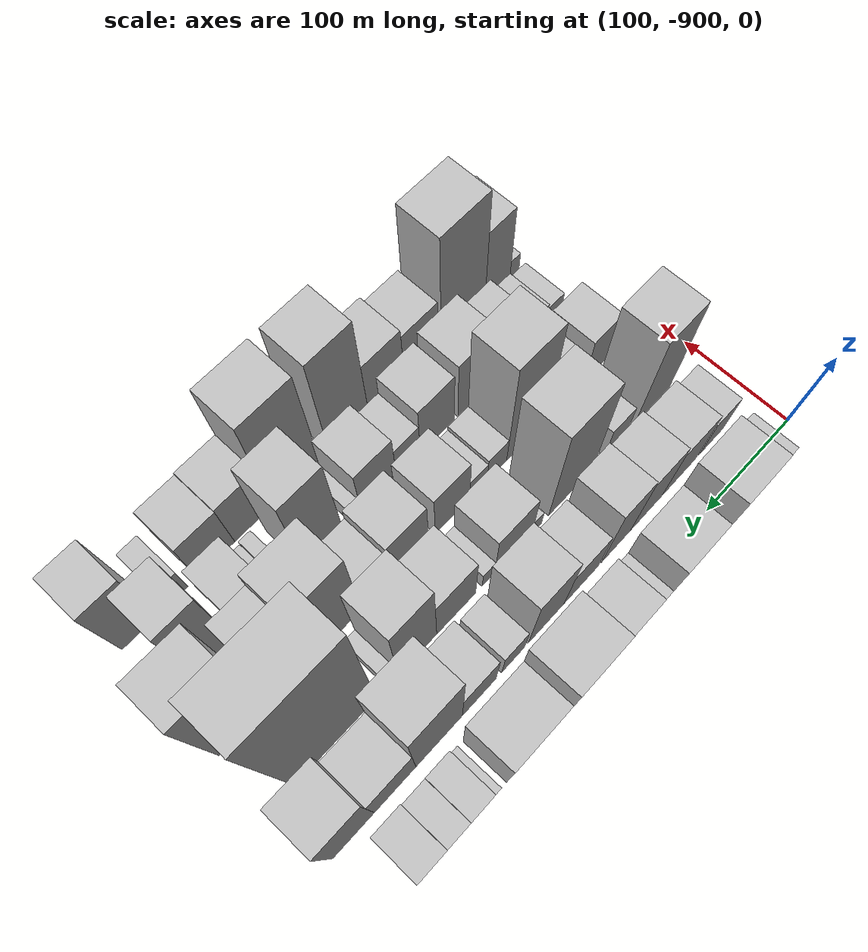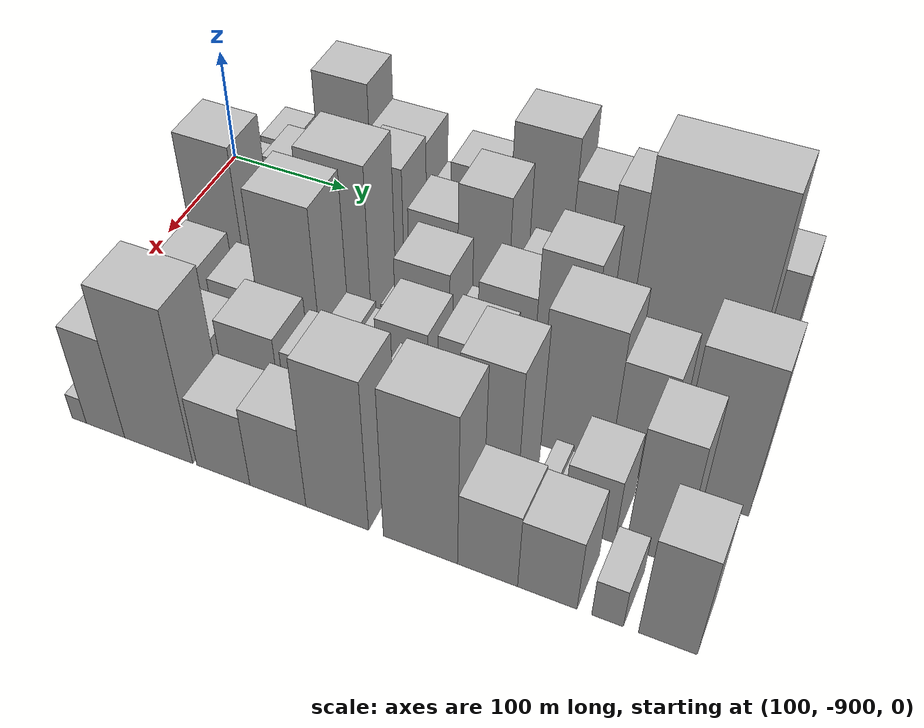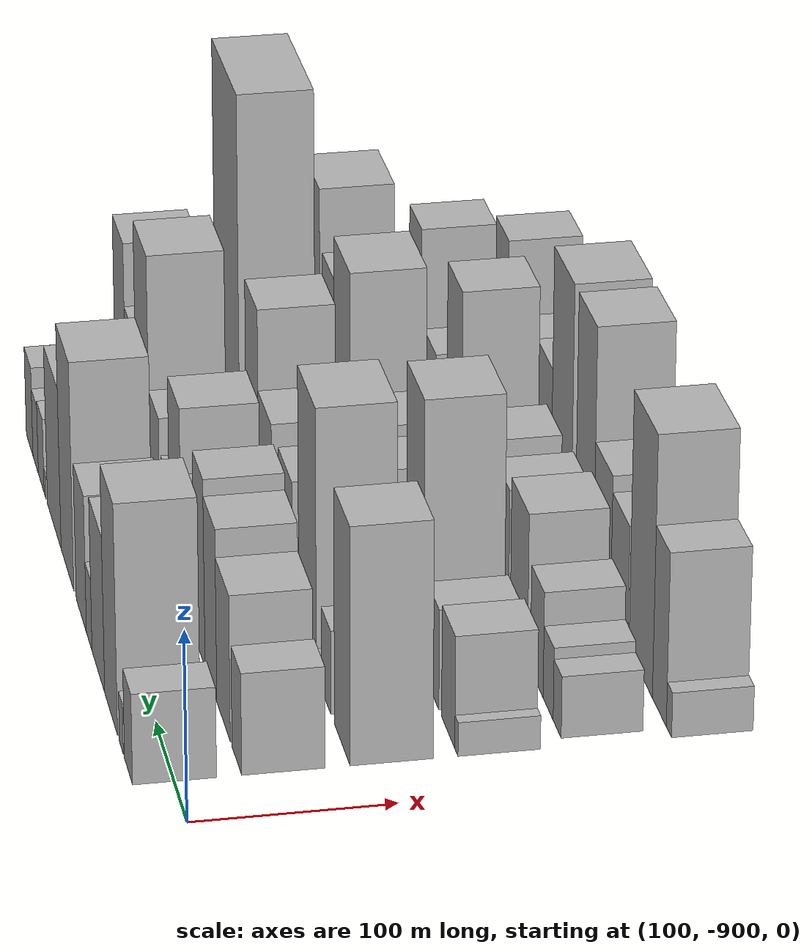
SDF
<sdf version="1.6">
 <world name="default">
  <model name="building_1">
   <static>1</static>
   <pose>100.0000 -846.7024 0 0.000000 0.000000 0.000000</pose>
   <link name="link">
    <pose>0 0 24.00 0 0 0</pose>
    <collision name="collision"><geometry><box><size>40.0000 26.5952 48.0000</size></box></geometry></collision>
    <visual name="visual">
     <cast_shadows>0</cast_shadows>
     <geometry><box><size>40.0000 26.5952 48.0000</size></box></geometry>
     <material>
      <script>
       <uri>model://HANNAS_wall/materials/scripts</uri>
       <uri>model://HANNAS_wall/materials/textures</uri>
       <name>vrc/HANNAS_wall</name>
      </script>
     </material>
    </visual>
   </link>
  </model>
  <model name="building_2">
   <static>1</static>
   <pose>100.0000 -822.7520 0 0.000000 0.000000 0.000000</pose>
   <link name="link">
    <pose>0 0 13.50 0 0 0</pose>
    <collision name="collision"><geometry><box><size>40.0000 13.3056 27.0000</size></box></geometry></collision>
    <visual name="visual">
     <cast_shadows>0</cast_shadows>
     <geometry><box><size>40.0000 13.3056 27.0000</size></box></geometry>
     <material>
      <script>
       <uri>model://HANNAS_wall/materials/scripts</uri>
       <uri>model://HANNAS_wall/materials/textures</uri>
       <name>vrc/HANNAS_wall</name>
      </script>
     </material>
    </visual>
   </link>
  </model>
  <model name="building_3">
   <static>1</static>
   <pose>100.0000 -788.0539 0 0.000000 0.000000 0.000000</pose>
   <link name="link">
    <pose>0 0 61.50 0 0 0</pose>
    <collision name="collision"><geometry><box><size>40.0000 44.0907 123.0000</size></box></geometry></collision>
    <visual name="visual">
     <cast_shadows>0</cast_shadows>
     <geometry><box><size>40.0000 44.0907 123.0000</size></box></geometry>
     <material>
      <script>
       <uri>model://HANNAS_wall/materials/scripts</uri>
       <uri>model://HANNAS_wall/materials/textures</uri>
       <name>vrc/HANNAS_wall</name>
      </script>
     </material>
    </visual>
   </link>
  </model>
  <model name="building_4">
   <static>1</static>
   <pose>100.0000 -743.5289 0 0.000000 0.000000 0.000000</pose>
   <link name="link">
    <pose>0 0 42.00 0 0 0</pose>
    <collision name="collision"><geometry><box><size>40.0000 44.9591 84.0000</size></box></geometry></collision>
    <visual name="visual">
     <cast_shadows>0</cast_shadows>
     <geometry><box><size>40.0000 44.9591 84.0000</size></box></geometry>
     <material>
      <script>
       <uri>model://HANNAS_wall/materials/scripts</uri>
       <uri>model://HANNAS_wall/materials/textures</uri>
       <name>vrc/HANNAS_wall</name>
      </script>
     </material>
    </visual>
   </link>
  </model>
  <model name="building_5">
   <static>1</static>
   <pose>100.0000 -711.0228 0 0.000000 0.000000 0.000000</pose>
   <link name="link">
    <pose>0 0 19.50 0 0 0</pose>
    <collision name="collision"><geometry><box><size>40.0000 20.0532 39.0000</size></box></geometry></collision>
    <visual name="visual">
     <cast_shadows>0</cast_shadows>
     <geometry><box><size>40.0000 20.0532 39.0000</size></box></geometry>
     <material>
      <script>
       <uri>model://HANNAS_wall/materials/scripts</uri>
       <uri>model://HANNAS_wall/materials/textures</uri>
       <name>vrc/HANNAS_wall</name>
      </script>
     </material>
    </visual>
   </link>
  </model>
  <model name="building_6">
   <static>1</static>
   <pose>100.0000 -682.1669 0 0.000000 0.000000 0.000000</pose>
   <link name="link">
    <pose>0 0 37.50 0 0 0</pose>
    <collision name="collision"><geometry><box><size>40.0000 37.6586 75.0000</size></box></geometry></collision>
    <visual name="visual">
     <cast_shadows>0</cast_shadows>
     <geometry><box><size>40.0000 37.6586 75.0000</size></box></geometry>
     <material>
      <script>
       <uri>model://HANNAS_wall/materials/scripts</uri>
       <uri>model://HANNAS_wall/materials/textures</uri>
       <name>vrc/HANNAS_wall</name>
      </script>
     </material>
    </visual>
   </link>
  </model>
  <model name="building_7">
   <static>1</static>
   <pose>100.0000 -630.3527 0 0.000000 0.000000 0.000000</pose>
   <link name="link">
    <pose>0 0 63.00 0 0 0</pose>
    <collision name="collision"><geometry><box><size>40.0000 47.9698 126.0000</size></box></geometry></collision>
    <visual name="visual">
     <cast_shadows>0</cast_shadows>
     <geometry><box><size>40.0000 47.9698 126.0000</size></box></geometry>
     <material>
      <script>
       <uri>model://HANNAS_wall/materials/scripts</uri>
       <uri>model://HANNAS_wall/materials/textures</uri>
       <name>vrc/HANNAS_wall</name>
      </script>
     </material>
    </visual>
   </link>
  </model>
  <model name="building_8">
   <static>1</static>
   <pose>100.0000 -579.6468 0 0.000000 0.000000 0.000000</pose>
   <link name="link">
    <pose>0 0 45.00 0 0 0</pose>
    <collision name="collision"><geometry><box><size>40.0000 53.4419 90.0000</size></box></geometry></collision>
    <visual name="visual">
     <cast_shadows>0</cast_shadows>
     <geometry><box><size>40.0000 53.4419 90.0000</size></box></geometry>
     <material>
      <script>
       <uri>model://HANNAS_wall/materials/scripts</uri>
       <uri>model://HANNAS_wall/materials/textures</uri>
       <name>vrc/HANNAS_wall</name>
      </script>
     </material>
    </visual>
   </link>
  </model>
  <model name="building_9">
   <static>1</static>
   <pose>100.0000 -543.1894 0 0.000000 0.000000 0.000000</pose>
   <link name="link">
    <pose>0 0 7.50 0 0 0</pose>
    <collision name="collision"><geometry><box><size>40.0000 7.4730 15.0000</size></box></geometry></collision>
    <visual name="visual">
     <cast_shadows>0</cast_shadows>
     <geometry><box><size>40.0000 7.4730 15.0000</size></box></geometry>
     <material>
      <script>
       <uri>model://HANNAS_wall/materials/scripts</uri>
       <uri>model://HANNAS_wall/materials/textures</uri>
       <name>vrc/HANNAS_wall</name>
      </script>
     </material>
    </visual>
   </link>
  </model>
  <model name="building_10">
   <static>1</static>
   <pose>100.0000 -527.8395 0 0.000000 0.000000 0.000000</pose>
   <link name="link">
    <pose>0 0 21.00 0 0 0</pose>
    <collision name="collision"><geometry><box><size>40.0000 23.2268 42.0000</size></box></geometry></collision>
    <visual name="visual">
     <cast_shadows>0</cast_shadows>
     <geometry><box><size>40.0000 23.2268 42.0000</size></box></geometry>
     <material>
      <script>
       <uri>model://HANNAS_wall/materials/scripts</uri>
       <uri>model://HANNAS_wall/materials/textures</uri>
       <name>vrc/HANNAS_wall</name>
      </script>
     </material>
    </visual>
   </link>
  </model>
  <model name="building_11">
   <static>1</static>
   <pose>100.0000 -505.2361 0 0.000000 0.000000 0.000000</pose>
   <link name="link">
    <pose>0 0 19.50 0 0 0</pose>
    <collision name="collision"><geometry><box><size>40.0000 21.9800 39.0000</size></box></geometry></collision>
    <visual name="visual">
     <cast_shadows>0</cast_shadows>
     <geometry><box><size>40.0000 21.9800 39.0000</size></box></geometry>
     <material>
      <script>
       <uri>model://HANNAS_wall/materials/scripts</uri>
       <uri>model://HANNAS_wall/materials/textures</uri>
       <name>vrc/HANNAS_wall</name>
      </script>
     </material>
    </visual>
   </link>
  </model>
  <model name="building_12">
   <static>1</static>
   <pose>100.0000 -480.6584 0 0.000000 0.000000 0.000000</pose>
   <link name="link">
    <pose>0 0 25.50 0 0 0</pose>
    <collision name="collision"><geometry><box><size>40.0000 27.1754 51.0000</size></box></geometry></collision>
    <visual name="visual">
     <cast_shadows>0</cast_shadows>
     <geometry><box><size>40.0000 27.1754 51.0000</size></box></geometry>
     <material>
      <script>
       <uri>model://HANNAS_wall/materials/scripts</uri>
       <uri>model://HANNAS_wall/materials/textures</uri>
       <name>vrc/HANNAS_wall</name>
      </script>
     </material>
    </visual>
   </link>
  </model>
  <model name="building_52">
   <static>1</static>
   <pose>152.0000 -845.5608 0 0.000000 0.000000 0.000000</pose>
   <link name="link">
    <pose>0 0 27.00 0 0 0</pose>
    <collision name="collision"><geometry><box><size>40.0000 28.8785 54.0000</size></box></geometry></collision>
    <visual name="visual">
     <cast_shadows>0</cast_shadows>
     <geometry><box><size>40.0000 28.8785 54.0000</size></box></geometry>
     <material>
      <script>
       <uri>model://HANNAS_wall/materials/scripts</uri>
       <uri>model://HANNAS_wall/materials/textures</uri>
       <name>vrc/HANNAS_wall</name>
      </script>
     </material>
    </visual>
   </link>
  </model>
  <model name="building_53">
   <static>1</static>
   <pose>152.0000 -805.6310 0 0.000000 0.000000 0.000000</pose>
   <link name="link">
    <pose>0 0 39.00 0 0 0</pose>
    <collision name="collision"><geometry><box><size>40.0000 40.9810 78.0000</size></box></geometry></collision>
    <visual name="visual">
     <cast_shadows>0</cast_shadows>
     <geometry><box><size>40.0000 40.9810 78.0000</size></box></geometry>
     <material>
      <script>
       <uri>model://HANNAS_wall/materials/scripts</uri>
       <uri>model://HANNAS_wall/materials/textures</uri>
       <name>vrc/HANNAS_wall</name>
      </script>
     </material>
    </visual>
   </link>
  </model>
  <model name="building_54">
   <static>1</static>
   <pose>152.0000 -766.7702 0 0.000000 0.000000 0.000000</pose>
   <link name="link">
    <pose>0 0 46.50 0 0 0</pose>
    <collision name="collision"><geometry><box><size>40.0000 36.7405 93.0000</size></box></geometry></collision>
    <visual name="visual">
     <cast_shadows>0</cast_shadows>
     <geometry><box><size>40.0000 36.7405 93.0000</size></box></geometry>
     <material>
      <script>
       <uri>model://HANNAS_wall/materials/scripts</uri>
       <uri>model://HANNAS_wall/materials/textures</uri>
       <name>vrc/HANNAS_wall</name>
      </script>
     </material>
    </visual>
   </link>
  </model>
  <model name="building_55">
   <static>1</static>
   <pose>152.0000 -731.8880 0 0.000000 0.000000 0.000000</pose>
   <link name="link">
    <pose>0 0 51.00 0 0 0</pose>
    <collision name="collision"><geometry><box><size>40.0000 33.0239 102.0000</size></box></geometry></collision>
    <visual name="visual">
     <cast_shadows>0</cast_shadows>
     <geometry><box><size>40.0000 33.0239 102.0000</size></box></geometry>
     <material>
      <script>
       <uri>model://HANNAS_wall/materials/scripts</uri>
       <uri>model://HANNAS_wall/materials/textures</uri>
       <name>vrc/HANNAS_wall</name>
      </script>
     </material>
    </visual>
   </link>
  </model>
  <model name="building_56">
   <static>1</static>
   <pose>152.0000 -692.2338 0 0.000000 0.000000 0.000000</pose>
   <link name="link">
    <pose>0 0 34.50 0 0 0</pose>
    <collision name="collision"><geometry><box><size>40.0000 38.2846 69.0000</size></box></geometry></collision>
    <visual name="visual">
     <cast_shadows>0</cast_shadows>
     <geometry><box><size>40.0000 38.2846 69.0000</size></box></geometry>
     <material>
      <script>
       <uri>model://HANNAS_wall/materials/scripts</uri>
       <uri>model://HANNAS_wall/materials/textures</uri>
       <name>vrc/HANNAS_wall</name>
      </script>
     </material>
    </visual>
   </link>
  </model>
  <model name="building_57">
   <static>1</static>
   <pose>152.0000 -653.6292 0 0.000000 0.000000 0.000000</pose>
   <link name="link">
    <pose>0 0 52.50 0 0 0</pose>
    <collision name="collision"><geometry><box><size>40.0000 38.9247 105.0000</size></box></geometry></collision>
    <visual name="visual">
     <cast_shadows>0</cast_shadows>
     <geometry><box><size>40.0000 38.9247 105.0000</size></box></geometry>
     <material>
      <script>
       <uri>model://HANNAS_wall/materials/scripts</uri>
       <uri>model://HANNAS_wall/materials/textures</uri>
       <name>vrc/HANNAS_wall</name>
      </script>
     </material>
    </visual>
   </link>
  </model>
  <model name="building_58">
   <static>1</static>
   <pose>152.0000 -618.0355 0 0.000000 0.000000 0.000000</pose>
   <link name="link">
    <pose>0 0 24.00 0 0 0</pose>
    <collision name="collision"><geometry><box><size>40.0000 24.2627 48.0000</size></box></geometry></collision>
    <visual name="visual">
     <cast_shadows>0</cast_shadows>
     <geometry><box><size>40.0000 24.2627 48.0000</size></box></geometry>
     <material>
      <script>
       <uri>model://HANNAS_wall/materials/scripts</uri>
       <uri>model://HANNAS_wall/materials/textures</uri>
       <name>vrc/HANNAS_wall</name>
      </script>
     </material>
    </visual>
   </link>
  </model>
  <model name="building_59">
   <static>1</static>
   <pose>152.0000 -582.5195 0 0.000000 0.000000 0.000000</pose>
   <link name="link">
    <pose>0 0 33.00 0 0 0</pose>
    <collision name="collision"><geometry><box><size>40.0000 34.7692 66.0000</size></box></geometry></collision>
    <visual name="visual">
     <cast_shadows>0</cast_shadows>
     <geometry><box><size>40.0000 34.7692 66.0000</size></box></geometry>
     <material>
      <script>
       <uri>model://HANNAS_wall/materials/scripts</uri>
       <uri>model://HANNAS_wall/materials/textures</uri>
       <name>vrc/HANNAS_wall</name>
      </script>
     </material>
    </visual>
   </link>
  </model>
  <model name="building_60">
   <static>1</static>
   <pose>152.0000 -541.9017 0 0.000000 0.000000 0.000000</pose>
   <link name="link">
    <pose>0 0 70.50 0 0 0</pose>
    <collision name="collision"><geometry><box><size>40.0000 46.4663 141.0000</size></box></geometry></collision>
    <visual name="visual">
     <cast_shadows>0</cast_shadows>
     <geometry><box><size>40.0000 46.4663 141.0000</size></box></geometry>
     <material>
      <script>
       <uri>model://HANNAS_wall/materials/scripts</uri>
       <uri>model://HANNAS_wall/materials/textures</uri>
       <name>vrc/HANNAS_wall</name>
      </script>
     </material>
    </visual>
   </link>
  </model>
  <model name="building_61">
   <static>1</static>
   <pose>152.0000 -498.4955 0 0.000000 0.000000 0.000000</pose>
   <link name="link">
    <pose>0 0 37.50 0 0 0</pose>
    <collision name="collision"><geometry><box><size>40.0000 40.3462 75.0000</size></box></geometry></collision>
    <visual name="visual">
     <cast_shadows>0</cast_shadows>
     <geometry><box><size>40.0000 40.3462 75.0000</size></box></geometry>
     <material>
      <script>
       <uri>model://HANNAS_wall/materials/scripts</uri>
       <uri>model://HANNAS_wall/materials/textures</uri>
       <name>vrc/HANNAS_wall</name>
      </script>
     </material>
    </visual>
   </link>
  </model>
  <model name="building_62">
   <static>1</static>
   <pose>152.0000 -458.6104 0 0.000000 0.000000 0.000000</pose>
   <link name="link">
    <pose>0 0 55.50 0 0 0</pose>
    <collision name="collision"><geometry><box><size>40.0000 39.4240 111.0000</size></box></geometry></collision>
    <visual name="visual">
     <cast_shadows>0</cast_shadows>
     <geometry><box><size>40.0000 39.4240 111.0000</size></box></geometry>
     <material>
      <script>
       <uri>model://HANNAS_wall/materials/scripts</uri>
       <uri>model://HANNAS_wall/materials/textures</uri>
       <name>vrc/HANNAS_wall</name>
      </script>
     </material>
    </visual>
   </link>
  </model>
  <model name="building_95">
   <static>1</static>
   <pose>204.0000 -838.6565 0 0.000000 0.000000 0.000000</pose>
   <link name="link">
    <pose>0 0 63.00 0 0 0</pose>
    <collision name="collision"><geometry><box><size>40.0000 42.6869 126.0000</size></box></geometry></collision>
    <visual name="visual">
     <cast_shadows>0</cast_shadows>
     <geometry><box><size>40.0000 42.6869 126.0000</size></box></geometry>
     <material>
      <script>
       <uri>model://HANNAS_wall/materials/scripts</uri>
       <uri>model://HANNAS_wall/materials/textures</uri>
       <name>vrc/HANNAS_wall</name>
      </script>
     </material>
    </visual>
   </link>
  </model>
  <model name="building_96">
   <static>1</static>
   <pose>204.0000 -794.2612 0 0.000000 0.000000 0.000000</pose>
   <link name="link">
    <pose>0 0 22.50 0 0 0</pose>
    <collision name="collision"><geometry><box><size>40.0000 26.1037 45.0000</size></box></geometry></collision>
    <visual name="visual">
     <cast_shadows>0</cast_shadows>
     <geometry><box><size>40.0000 26.1037 45.0000</size></box></geometry>
     <material>
      <script>
       <uri>model://HANNAS_wall/materials/scripts</uri>
       <uri>model://HANNAS_wall/materials/textures</uri>
       <name>vrc/HANNAS_wall</name>
      </script>
     </material>
    </visual>
   </link>
  </model>
  <model name="building_97">
   <static>1</static>
   <pose>204.0000 -770.5938 0 0.000000 0.000000 0.000000</pose>
   <link name="link">
    <pose>0 0 7.50 0 0 0</pose>
    <collision name="collision"><geometry><box><size>40.0000 7.2311 15.0000</size></box></geometry></collision>
    <visual name="visual">
     <cast_shadows>0</cast_shadows>
     <geometry><box><size>40.0000 7.2311 15.0000</size></box></geometry>
     <material>
      <script>
       <uri>model://HANNAS_wall/materials/scripts</uri>
       <uri>model://HANNAS_wall/materials/textures</uri>
       <name>vrc/HANNAS_wall</name>
      </script>
     </material>
    </visual>
   </link>
  </model>
  <model name="building_98">
   <static>1</static>
   <pose>204.0000 -741.7502 0 0.000000 0.000000 0.000000</pose>
   <link name="link">
    <pose>0 0 72.00 0 0 0</pose>
    <collision name="collision"><geometry><box><size>40.0000 50.4561 144.0000</size></box></geometry></collision>
    <visual name="visual">
     <cast_shadows>0</cast_shadows>
     <geometry><box><size>40.0000 50.4561 144.0000</size></box></geometry>
     <material>
      <script>
       <uri>model://HANNAS_wall/materials/scripts</uri>
       <uri>model://HANNAS_wall/materials/textures</uri>
       <name>vrc/HANNAS_wall</name>
      </script>
     </material>
    </visual>
   </link>
  </model>
  <model name="building_99">
   <static>1</static>
   <pose>204.0000 -703.0213 0 0.000000 0.000000 0.000000</pose>
   <link name="link">
    <pose>0 0 12.00 0 0 0</pose>
    <collision name="collision"><geometry><box><size>40.0000 11.0017 24.0000</size></box></geometry></collision>
    <visual name="visual">
     <cast_shadows>0</cast_shadows>
     <geometry><box><size>40.0000 11.0017 24.0000</size></box></geometry>
     <material>
      <script>
       <uri>model://HANNAS_wall/materials/scripts</uri>
       <uri>model://HANNAS_wall/materials/textures</uri>
       <name>vrc/HANNAS_wall</name>
      </script>
     </material>
    </visual>
   </link>
  </model>
  <model name="building_100">
   <static>1</static>
   <pose>204.0000 -677.0593 0 0.000000 0.000000 0.000000</pose>
   <link name="link">
    <pose>0 0 36.00 0 0 0</pose>
    <collision name="collision"><geometry><box><size>40.0000 40.9223 72.0000</size></box></geometry></collision>
    <visual name="visual">
     <cast_shadows>0</cast_shadows>
     <geometry><box><size>40.0000 40.9223 72.0000</size></box></geometry>
     <material>
      <script>
       <uri>model://HANNAS_wall/materials/scripts</uri>
       <uri>model://HANNAS_wall/materials/textures</uri>
       <name>vrc/HANNAS_wall</name>
      </script>
     </material>
    </visual>
   </link>
  </model>
  <model name="building_101">
   <static>1</static>
   <pose>204.0000 -649.8533 0 0.000000 0.000000 0.000000</pose>
   <link name="link">
    <pose>0 0 13.50 0 0 0</pose>
    <collision name="collision"><geometry><box><size>40.0000 13.4896 27.0000</size></box></geometry></collision>
    <visual name="visual">
     <cast_shadows>0</cast_shadows>
     <geometry><box><size>40.0000 13.4896 27.0000</size></box></geometry>
     <material>
      <script>
       <uri>model://HANNAS_wall/materials/scripts</uri>
       <uri>model://HANNAS_wall/materials/textures</uri>
       <name>vrc/HANNAS_wall</name>
      </script>
     </material>
    </visual>
   </link>
  </model>
  <model name="building_102">
   <static>1</static>
   <pose>204.0000 -615.5711 0 0.000000 0.000000 0.000000</pose>
   <link name="link">
    <pose>0 0 37.50 0 0 0</pose>
    <collision name="collision"><geometry><box><size>40.0000 41.0748 75.0000</size></box></geometry></collision>
    <visual name="visual">
     <cast_shadows>0</cast_shadows>
     <geometry><box><size>40.0000 41.0748 75.0000</size></box></geometry>
     <material>
      <script>
       <uri>model://HANNAS_wall/materials/scripts</uri>
       <uri>model://HANNAS_wall/materials/textures</uri>
       <name>vrc/HANNAS_wall</name>
      </script>
     </material>
    </visual>
   </link>
  </model>
  <model name="building_103">
   <static>1</static>
   <pose>204.0000 -575.3755 0 0.000000 0.000000 0.000000</pose>
   <link name="link">
    <pose>0 0 60.00 0 0 0</pose>
    <collision name="collision"><geometry><box><size>40.0000 39.3165 120.0000</size></box></geometry></collision>
    <visual name="visual">
     <cast_shadows>0</cast_shadows>
     <geometry><box><size>40.0000 39.3165 120.0000</size></box></geometry>
     <material>
      <script>
       <uri>model://HANNAS_wall/materials/scripts</uri>
       <uri>model://HANNAS_wall/materials/textures</uri>
       <name>vrc/HANNAS_wall</name>
      </script>
     </material>
    </visual>
   </link>
  </model>
  <model name="building_104">
   <static>1</static>
   <pose>204.0000 -549.9346 0 0.000000 0.000000 0.000000</pose>
   <link name="link">
    <pose>0 0 12.00 0 0 0</pose>
    <collision name="collision"><geometry><box><size>40.0000 11.5653 24.0000</size></box></geometry></collision>
    <visual name="visual">
     <cast_shadows>0</cast_shadows>
     <geometry><box><size>40.0000 11.5653 24.0000</size></box></geometry>
     <material>
      <script>
       <uri>model://HANNAS_wall/materials/scripts</uri>
       <uri>model://HANNAS_wall/materials/textures</uri>
       <name>vrc/HANNAS_wall</name>
      </script>
     </material>
    </visual>
   </link>
  </model>
  <model name="building_105">
   <static>1</static>
   <pose>204.0000 -494.1365 0 0.000000 0.000000 0.000000</pose>
   <link name="link">
    <pose>0 0 106.50 0 0 0</pose>
    <collision name="collision"><geometry><box><size>40.0000 80.0309 213.0000</size></box></geometry></collision>
    <visual name="visual">
     <cast_shadows>0</cast_shadows>
     <geometry><box><size>40.0000 80.0309 213.0000</size></box></geometry>
     <material>
      <script>
       <uri>model://HANNAS_wall/materials/scripts</uri>
       <uri>model://HANNAS_wall/materials/textures</uri>
       <name>vrc/HANNAS_wall</name>
      </script>
     </material>
    </visual>
   </link>
  </model>
  <model name="building_146">
   <static>1</static>
   <pose>256.0000 -856.1612 0 0.000000 0.000000 0.000000</pose>
   <link name="link">
    <pose>0 0 9.00 0 0 0</pose>
    <collision name="collision"><geometry><box><size>40.0000 7.6776 18.0000</size></box></geometry></collision>
    <visual name="visual">
     <cast_shadows>0</cast_shadows>
     <geometry><box><size>40.0000 7.6776 18.0000</size></box></geometry>
     <material>
      <script>
       <uri>model://HANNAS_wall/materials/scripts</uri>
       <uri>model://HANNAS_wall/materials/textures</uri>
       <name>vrc/HANNAS_wall</name>
      </script>
     </material>
    </visual>
   </link>
  </model>
  <model name="building_147">
   <static>1</static>
   <pose>256.0000 -835.8285 0 0.000000 0.000000 0.000000</pose>
   <link name="link">
    <pose>0 0 30.00 0 0 0</pose>
    <collision name="collision"><geometry><box><size>40.0000 32.9878 60.0000</size></box></geometry></collision>
    <visual name="visual">
     <cast_shadows>0</cast_shadows>
     <geometry><box><size>40.0000 32.9878 60.0000</size></box></geometry>
     <material>
      <script>
       <uri>model://HANNAS_wall/materials/scripts</uri>
       <uri>model://HANNAS_wall/materials/textures</uri>
       <name>vrc/HANNAS_wall</name>
      </script>
     </material>
    </visual>
   </link>
  </model>
  <model name="building_148">
   <static>1</static>
   <pose>256.0000 -796.9797 0 0.000000 0.000000 0.000000</pose>
   <link name="link">
    <pose>0 0 27.00 0 0 0</pose>
    <collision name="collision"><geometry><box><size>40.0000 30.7099 54.0000</size></box></geometry></collision>
    <visual name="visual">
     <cast_shadows>0</cast_shadows>
     <geometry><box><size>40.0000 30.7099 54.0000</size></box></geometry>
     <material>
      <script>
       <uri>model://HANNAS_wall/materials/scripts</uri>
       <uri>model://HANNAS_wall/materials/textures</uri>
       <name>vrc/HANNAS_wall</name>
      </script>
     </material>
    </visual>
   </link>
  </model>
  <model name="building_149">
   <static>1</static>
   <pose>256.0000 -750.8274 0 0.000000 0.000000 0.000000</pose>
   <link name="link">
    <pose>0 0 73.50 0 0 0</pose>
    <collision name="collision"><geometry><box><size>40.0000 45.5946 147.0000</size></box></geometry></collision>
    <visual name="visual">
     <cast_shadows>0</cast_shadows>
     <geometry><box><size>40.0000 45.5946 147.0000</size></box></geometry>
     <material>
      <script>
       <uri>model://HANNAS_wall/materials/scripts</uri>
       <uri>model://HANNAS_wall/materials/textures</uri>
       <name>vrc/HANNAS_wall</name>
      </script>
     </material>
    </visual>
   </link>
  </model>
  <model name="building_150">
   <static>1</static>
   <pose>256.0000 -717.0503 0 0.000000 0.000000 0.000000</pose>
   <link name="link">
    <pose>0 0 19.50 0 0 0</pose>
    <collision name="collision"><geometry><box><size>40.0000 21.9598 39.0000</size></box></geometry></collision>
    <visual name="visual">
     <cast_shadows>0</cast_shadows>
     <geometry><box><size>40.0000 21.9598 39.0000</size></box></geometry>
     <material>
      <script>
       <uri>model://HANNAS_wall/materials/scripts</uri>
       <uri>model://HANNAS_wall/materials/textures</uri>
       <name>vrc/HANNAS_wall</name>
      </script>
     </material>
    </visual>
   </link>
  </model>
  <model name="building_151">
   <static>1</static>
   <pose>256.0000 -696.2916 0 0.000000 0.000000 0.000000</pose>
   <link name="link">
    <pose>0 0 16.50 0 0 0</pose>
    <collision name="collision"><geometry><box><size>40.0000 19.5576 33.0000</size></box></geometry></collision>
    <visual name="visual">
     <cast_shadows>0</cast_shadows>
     <geometry><box><size>40.0000 19.5576 33.0000</size></box></geometry>
     <material>
      <script>
       <uri>model://HANNAS_wall/materials/scripts</uri>
       <uri>model://HANNAS_wall/materials/textures</uri>
       <name>vrc/HANNAS_wall</name>
      </script>
     </material>
    </visual>
   </link>
  </model>
  <model name="building_152">
   <static>1</static>
   <pose>256.0000 -667.8271 0 0.000000 0.000000 0.000000</pose>
   <link name="link">
    <pose>0 0 34.50 0 0 0</pose>
    <collision name="collision"><geometry><box><size>40.0000 37.3714 69.0000</size></box></geometry></collision>
    <visual name="visual">
     <cast_shadows>0</cast_shadows>
     <geometry><box><size>40.0000 37.3714 69.0000</size></box></geometry>
     <material>
      <script>
       <uri>model://HANNAS_wall/materials/scripts</uri>
       <uri>model://HANNAS_wall/materials/textures</uri>
       <name>vrc/HANNAS_wall</name>
      </script>
     </material>
    </visual>
   </link>
  </model>
  <model name="building_153">
   <static>1</static>
   <pose>256.0000 -622.3368 0 0.000000 0.000000 0.000000</pose>
   <link name="link">
    <pose>0 0 36.00 0 0 0</pose>
    <collision name="collision"><geometry><box><size>40.0000 39.6092 72.0000</size></box></geometry></collision>
    <visual name="visual">
     <cast_shadows>0</cast_shadows>
     <geometry><box><size>40.0000 39.6092 72.0000</size></box></geometry>
     <material>
      <script>
       <uri>model://HANNAS_wall/materials/scripts</uri>
       <uri>model://HANNAS_wall/materials/textures</uri>
       <name>vrc/HANNAS_wall</name>
      </script>
     </material>
    </visual>
   </link>
  </model>
  <model name="building_154">
   <static>1</static>
   <pose>256.0000 -587.0930 0 0.000000 0.000000 0.000000</pose>
   <link name="link">
    <pose>0 0 28.50 0 0 0</pose>
    <collision name="collision"><geometry><box><size>40.0000 30.8783 57.0000</size></box></geometry></collision>
    <visual name="visual">
     <cast_shadows>0</cast_shadows>
     <geometry><box><size>40.0000 30.8783 57.0000</size></box></geometry>
     <material>
      <script>
       <uri>model://HANNAS_wall/materials/scripts</uri>
       <uri>model://HANNAS_wall/materials/textures</uri>
       <name>vrc/HANNAS_wall</name>
      </script>
     </material>
    </visual>
   </link>
  </model>
  <model name="building_155">
   <static>1</static>
   <pose>256.0000 -547.3016 0 0.000000 0.000000 0.000000</pose>
   <link name="link">
    <pose>0 0 63.00 0 0 0</pose>
    <collision name="collision"><geometry><box><size>40.0000 48.7045 126.0000</size></box></geometry></collision>
    <visual name="visual">
     <cast_shadows>0</cast_shadows>
     <geometry><box><size>40.0000 48.7045 126.0000</size></box></geometry>
     <material>
      <script>
       <uri>model://HANNAS_wall/materials/scripts</uri>
       <uri>model://HANNAS_wall/materials/textures</uri>
       <name>vrc/HANNAS_wall</name>
      </script>
     </material>
    </visual>
   </link>
  </model>
  <model name="building_156">
   <static>1</static>
   <pose>256.0000 -505.8072 0 0.000000 0.000000 0.000000</pose>
   <link name="link">
    <pose>0 0 51.00 0 0 0</pose>
    <collision name="collision"><geometry><box><size>40.0000 34.2844 102.0000</size></box></geometry></collision>
    <visual name="visual">
     <cast_shadows>0</cast_shadows>
     <geometry><box><size>40.0000 34.2844 102.0000</size></box></geometry>
     <material>
      <script>
       <uri>model://HANNAS_wall/materials/scripts</uri>
       <uri>model://HANNAS_wall/materials/textures</uri>
       <name>vrc/HANNAS_wall</name>
      </script>
     </material>
    </visual>
   </link>
  </model>
  <model name="building_157">
   <static>1</static>
   <pose>256.0000 -456.6961 0 0.000000 0.000000 0.000000</pose>
   <link name="link">
    <pose>0 0 67.50 0 0 0</pose>
    <collision name="collision"><geometry><box><size>40.0000 47.9377 135.0000</size></box></geometry></collision>
    <visual name="visual">
     <cast_shadows>0</cast_shadows>
     <geometry><box><size>40.0000 47.9377 135.0000</size></box></geometry>
     <material>
      <script>
       <uri>model://HANNAS_wall/materials/scripts</uri>
       <uri>model://HANNAS_wall/materials/textures</uri>
       <name>vrc/HANNAS_wall</name>
      </script>
     </material>
    </visual>
   </link>
  </model>
  <model name="building_192">
   <static>1</static>
   <pose>308.0000 -841.7875 0 0.000000 0.000000 0.000000</pose>
   <link name="link">
    <pose>0 0 16.50 0 0 0</pose>
    <collision name="collision"><geometry><box><size>40.0000 18.4250 33.0000</size></box></geometry></collision>
    <visual name="visual">
     <cast_shadows>0</cast_shadows>
     <geometry><box><size>40.0000 18.4250 33.0000</size></box></geometry>
     <material>
      <script>
       <uri>model://HANNAS_wall/materials/scripts</uri>
       <uri>model://HANNAS_wall/materials/textures</uri>
       <name>vrc/HANNAS_wall</name>
      </script>
     </material>
    </visual>
   </link>
  </model>
  <model name="building_193">
   <static>1</static>
   <pose>308.0000 -820.8944 0 0.000000 0.000000 0.000000</pose>
   <link name="link">
    <pose>0 0 19.50 0 0 0</pose>
    <collision name="collision"><geometry><box><size>40.0000 23.3612 39.0000</size></box></geometry></collision>
    <visual name="visual">
     <cast_shadows>0</cast_shadows>
     <geometry><box><size>40.0000 23.3612 39.0000</size></box></geometry>
     <material>
      <script>
       <uri>model://HANNAS_wall/materials/scripts</uri>
       <uri>model://HANNAS_wall/materials/textures</uri>
       <name>vrc/HANNAS_wall</name>
      </script>
     </material>
    </visual>
   </link>
  </model>
  <model name="building_194">
   <static>1</static>
   <pose>308.0000 -794.2617 0 0.000000 0.000000 0.000000</pose>
   <link name="link">
    <pose>0 0 28.50 0 0 0</pose>
    <collision name="collision"><geometry><box><size>40.0000 29.9042 57.0000</size></box></geometry></collision>
    <visual name="visual">
     <cast_shadows>0</cast_shadows>
     <geometry><box><size>40.0000 29.9042 57.0000</size></box></geometry>
     <material>
      <script>
       <uri>model://HANNAS_wall/materials/scripts</uri>
       <uri>model://HANNAS_wall/materials/textures</uri>
       <name>vrc/HANNAS_wall</name>
      </script>
     </material>
    </visual>
   </link>
  </model>
  <model name="building_195">
   <static>1</static>
   <pose>308.0000 -775.7201 0 0.000000 0.000000 0.000000</pose>
   <link name="link">
    <pose>0 0 7.50 0 0 0</pose>
    <collision name="collision"><geometry><box><size>40.0000 7.1791 15.0000</size></box></geometry></collision>
    <visual name="visual">
     <cast_shadows>0</cast_shadows>
     <geometry><box><size>40.0000 7.1791 15.0000</size></box></geometry>
     <material>
      <script>
       <uri>model://HANNAS_wall/materials/scripts</uri>
       <uri>model://HANNAS_wall/materials/textures</uri>
       <name>vrc/HANNAS_wall</name>
      </script>
     </material>
    </visual>
   </link>
  </model>
  <model name="building_196">
   <static>1</static>
   <pose>308.0000 -751.1979 0 0.000000 0.000000 0.000000</pose>
   <link name="link">
    <pose>0 0 40.50 0 0 0</pose>
    <collision name="collision"><geometry><box><size>40.0000 41.8653 81.0000</size></box></geometry></collision>
    <visual name="visual">
     <cast_shadows>0</cast_shadows>
     <geometry><box><size>40.0000 41.8653 81.0000</size></box></geometry>
     <material>
      <script>
       <uri>model://HANNAS_wall/materials/scripts</uri>
       <uri>model://HANNAS_wall/materials/textures</uri>
       <name>vrc/HANNAS_wall</name>
      </script>
     </material>
    </visual>
   </link>
  </model>
  <model name="building_197">
   <static>1</static>
   <pose>308.0000 -707.3029 0 0.000000 0.000000 0.000000</pose>
   <link name="link">
    <pose>0 0 36.00 0 0 0</pose>
    <collision name="collision"><geometry><box><size>40.0000 37.9247 72.0000</size></box></geometry></collision>
    <visual name="visual">
     <cast_shadows>0</cast_shadows>
     <geometry><box><size>40.0000 37.9247 72.0000</size></box></geometry>
     <material>
      <script>
       <uri>model://HANNAS_wall/materials/scripts</uri>
       <uri>model://HANNAS_wall/materials/textures</uri>
       <name>vrc/HANNAS_wall</name>
      </script>
     </material>
    </visual>
   </link>
  </model>
  <model name="building_198">
   <static>1</static>
   <pose>308.0000 -675.2648 0 0.000000 0.000000 0.000000</pose>
   <link name="link">
    <pose>0 0 24.00 0 0 0</pose>
    <collision name="collision"><geometry><box><size>40.0000 26.1515 48.0000</size></box></geometry></collision>
    <visual name="visual">
     <cast_shadows>0</cast_shadows>
     <geometry><box><size>40.0000 26.1515 48.0000</size></box></geometry>
     <material>
      <script>
       <uri>model://HANNAS_wall/materials/scripts</uri>
       <uri>model://HANNAS_wall/materials/textures</uri>
       <name>vrc/HANNAS_wall</name>
      </script>
     </material>
    </visual>
   </link>
  </model>
  <model name="building_199">
   <static>1</static>
   <pose>308.0000 -643.3737 0 0.000000 0.000000 0.000000</pose>
   <link name="link">
    <pose>0 0 34.50 0 0 0</pose>
    <collision name="collision"><geometry><box><size>40.0000 37.6309 69.0000</size></box></geometry></collision>
    <visual name="visual">
     <cast_shadows>0</cast_shadows>
     <geometry><box><size>40.0000 37.6309 69.0000</size></box></geometry>
     <material>
      <script>
       <uri>model://HANNAS_wall/materials/scripts</uri>
       <uri>model://HANNAS_wall/materials/textures</uri>
       <name>vrc/HANNAS_wall</name>
      </script>
     </material>
    </visual>
   </link>
  </model>
  <model name="building_200">
   <static>1</static>
   <pose>308.0000 -618.9376 0 0.000000 0.000000 0.000000</pose>
   <link name="link">
    <pose>0 0 13.50 0 0 0</pose>
    <collision name="collision"><geometry><box><size>40.0000 11.2413 27.0000</size></box></geometry></collision>
    <visual name="visual">
     <cast_shadows>0</cast_shadows>
     <geometry><box><size>40.0000 11.2413 27.0000</size></box></geometry>
     <material>
      <script>
       <uri>model://HANNAS_wall/materials/scripts</uri>
       <uri>model://HANNAS_wall/materials/textures</uri>
       <name>vrc/HANNAS_wall</name>
      </script>
     </material>
    </visual>
   </link>
  </model>
  <model name="building_201">
   <static>1</static>
   <pose>308.0000 -585.5897 0 0.000000 0.000000 0.000000</pose>
   <link name="link">
    <pose>0 0 63.00 0 0 0</pose>
    <collision name="collision"><geometry><box><size>40.0000 39.4544 126.0000</size></box></geometry></collision>
    <visual name="visual">
     <cast_shadows>0</cast_shadows>
     <geometry><box><size>40.0000 39.4544 126.0000</size></box></geometry>
     <material>
      <script>
       <uri>model://HANNAS_wall/materials/scripts</uri>
       <uri>model://HANNAS_wall/materials/textures</uri>
       <name>vrc/HANNAS_wall</name>
      </script>
     </material>
    </visual>
   </link>
  </model>
  <model name="building_202">
   <static>1</static>
   <pose>308.0000 -550.0448 0 0.000000 0.000000 0.000000</pose>
   <link name="link">
    <pose>0 0 13.50 0 0 0</pose>
    <collision name="collision"><geometry><box><size>40.0000 11.6356 27.0000</size></box></geometry></collision>
    <visual name="visual">
     <cast_shadows>0</cast_shadows>
     <geometry><box><size>40.0000 11.6356 27.0000</size></box></geometry>
     <material>
      <script>
       <uri>model://HANNAS_wall/materials/scripts</uri>
       <uri>model://HANNAS_wall/materials/textures</uri>
       <name>vrc/HANNAS_wall</name>
      </script>
     </material>
    </visual>
   </link>
  </model>
  <model name="building_203">
   <static>1</static>
   <pose>308.0000 -539.9558 0 0.000000 0.000000 0.000000</pose>
   <link name="link">
    <pose>0 0 10.50 0 0 0</pose>
    <collision name="collision"><geometry><box><size>40.0000 8.5424 21.0000</size></box></geometry></collision>
    <visual name="visual">
     <cast_shadows>0</cast_shadows>
     <geometry><box><size>40.0000 8.5424 21.0000</size></box></geometry>
     <material>
      <script>
       <uri>model://HANNAS_wall/materials/scripts</uri>
       <uri>model://HANNAS_wall/materials/textures</uri>
       <name>vrc/HANNAS_wall</name>
      </script>
     </material>
    </visual>
   </link>
  </model>
  <model name="building_204">
   <static>1</static>
   <pose>308.0000 -518.8464 0 0.000000 0.000000 0.000000</pose>
   <link name="link">
    <pose>0 0 30.00 0 0 0</pose>
    <collision name="collision"><geometry><box><size>40.0000 33.6763 60.0000</size></box></geometry></collision>
    <visual name="visual">
     <cast_shadows>0</cast_shadows>
     <geometry><box><size>40.0000 33.6763 60.0000</size></box></geometry>
     <material>
      <script>
       <uri>model://HANNAS_wall/materials/scripts</uri>
       <uri>model://HANNAS_wall/materials/textures</uri>
       <name>vrc/HANNAS_wall</name>
      </script>
     </material>
    </visual>
   </link>
  </model>
  <model name="building_205">
   <static>1</static>
   <pose>308.0000 -477.8212 0 0.000000 0.000000 0.000000</pose>
   <link name="link">
    <pose>0 0 57.00 0 0 0</pose>
    <collision name="collision"><geometry><box><size>40.0000 34.3741 114.0000</size></box></geometry></collision>
    <visual name="visual">
     <cast_shadows>0</cast_shadows>
     <geometry><box><size>40.0000 34.3741 114.0000</size></box></geometry>
     <material>
      <script>
       <uri>model://HANNAS_wall/materials/scripts</uri>
       <uri>model://HANNAS_wall/materials/textures</uri>
       <name>vrc/HANNAS_wall</name>
      </script>
     </material>
    </visual>
   </link>
  </model>
  <model name="building_242">
   <static>1</static>
   <pose>360.0000 -854.4038 0 0.000000 0.000000 0.000000</pose>
   <link name="link">
    <pose>0 0 12.00 0 0 0</pose>
    <collision name="collision"><geometry><box><size>40.0000 11.1924 24.0000</size></box></geometry></collision>
    <visual name="visual">
     <cast_shadows>0</cast_shadows>
     <geometry><box><size>40.0000 11.1924 24.0000</size></box></geometry>
     <material>
      <script>
       <uri>model://HANNAS_wall/materials/scripts</uri>
       <uri>model://HANNAS_wall/materials/textures</uri>
       <name>vrc/HANNAS_wall</name>
      </script>
     </material>
    </visual>
   </link>
  </model>
  <model name="building_243">
   <static>1</static>
   <pose>360.0000 -833.8632 0 0.000000 0.000000 0.000000</pose>
   <link name="link">
    <pose>0 0 46.50 0 0 0</pose>
    <collision name="collision"><geometry><box><size>40.0000 29.8888 93.0000</size></box></geometry></collision>
    <visual name="visual">
     <cast_shadows>0</cast_shadows>
     <geometry><box><size>40.0000 29.8888 93.0000</size></box></geometry>
     <material>
      <script>
       <uri>model://HANNAS_wall/materials/scripts</uri>
       <uri>model://HANNAS_wall/materials/textures</uri>
       <name>vrc/HANNAS_wall</name>
      </script>
     </material>
    </visual>
   </link>
  </model>
  <model name="building_244">
   <static>1</static>
   <pose>360.0000 -793.1205 0 0.000000 0.000000 0.000000</pose>
   <link name="link">
    <pose>0 0 70.50 0 0 0</pose>
    <collision name="collision"><geometry><box><size>40.0000 51.5965 141.0000</size></box></geometry></collision>
    <visual name="visual">
     <cast_shadows>0</cast_shadows>
     <geometry><box><size>40.0000 51.5965 141.0000</size></box></geometry>
     <material>
      <script>
       <uri>model://HANNAS_wall/materials/scripts</uri>
       <uri>model://HANNAS_wall/materials/textures</uri>
       <name>vrc/HANNAS_wall</name>
      </script>
     </material>
    </visual>
   </link>
  </model>
  <model name="building_245">
   <static>1</static>
   <pose>360.0000 -744.9157 0 0.000000 0.000000 0.000000</pose>
   <link name="link">
    <pose>0 0 33.00 0 0 0</pose>
    <collision name="collision"><geometry><box><size>40.0000 38.8132 66.0000</size></box></geometry></collision>
    <visual name="visual">
     <cast_shadows>0</cast_shadows>
     <geometry><box><size>40.0000 38.8132 66.0000</size></box></geometry>
     <material>
      <script>
       <uri>model://HANNAS_wall/materials/scripts</uri>
       <uri>model://HANNAS_wall/materials/textures</uri>
       <name>vrc/HANNAS_wall</name>
      </script>
     </material>
    </visual>
   </link>
  </model>
  <model name="building_246">
   <static>1</static>
   <pose>360.0000 -705.5808 0 0.000000 0.000000 0.000000</pose>
   <link name="link">
    <pose>0 0 37.50 0 0 0</pose>
    <collision name="collision"><geometry><box><size>40.0000 39.8565 75.0000</size></box></geometry></collision>
    <visual name="visual">
     <cast_shadows>0</cast_shadows>
     <geometry><box><size>40.0000 39.8565 75.0000</size></box></geometry>
     <material>
      <script>
       <uri>model://HANNAS_wall/materials/scripts</uri>
       <uri>model://HANNAS_wall/materials/textures</uri>
       <name>vrc/HANNAS_wall</name>
      </script>
     </material>
    </visual>
   </link>
  </model>
  <model name="building_247">
   <static>1</static>
   <pose>360.0000 -664.0079 0 0.000000 0.000000 0.000000</pose>
   <link name="link">
    <pose>0 0 69.00 0 0 0</pose>
    <collision name="collision"><geometry><box><size>40.0000 43.2894 138.0000</size></box></geometry></collision>
    <visual name="visual">
     <cast_shadows>0</cast_shadows>
     <geometry><box><size>40.0000 43.2894 138.0000</size></box></geometry>
     <material>
      <script>
       <uri>model://HANNAS_wall/materials/scripts</uri>
       <uri>model://HANNAS_wall/materials/textures</uri>
       <name>vrc/HANNAS_wall</name>
      </script>
     </material>
    </visual>
   </link>
  </model>
  <model name="building_248">
   <static>1</static>
   <pose>360.0000 -607.8091 0 0.000000 0.000000 0.000000</pose>
   <link name="link">
    <pose>0 0 69.00 0 0 0</pose>
    <collision name="collision"><geometry><box><size>40.0000 49.1082 138.0000</size></box></geometry></collision>
    <visual name="visual">
     <cast_shadows>0</cast_shadows>
     <geometry><box><size>40.0000 49.1082 138.0000</size></box></geometry>
     <material>
      <script>
       <uri>model://HANNAS_wall/materials/scripts</uri>
       <uri>model://HANNAS_wall/materials/textures</uri>
       <name>vrc/HANNAS_wall</name>
      </script>
     </material>
    </visual>
   </link>
  </model>
  <model name="building_249">
   <static>1</static>
   <pose>360.0000 -564.0122 0 0.000000 0.000000 0.000000</pose>
   <link name="link">
    <pose>0 0 34.50 0 0 0</pose>
    <collision name="collision"><geometry><box><size>40.0000 38.4856 69.0000</size></box></geometry></collision>
    <visual name="visual">
     <cast_shadows>0</cast_shadows>
     <geometry><box><size>40.0000 38.4856 69.0000</size></box></geometry>
     <material>
      <script>
       <uri>model://HANNAS_wall/materials/scripts</uri>
       <uri>model://HANNAS_wall/materials/textures</uri>
       <name>vrc/HANNAS_wall</name>
      </script>
     </material>
    </visual>
   </link>
  </model>
  <model name="building_250">
   <static>1</static>
   <pose>360.0000 -526.2445 0 0.000000 0.000000 0.000000</pose>
   <link name="link">
    <pose>0 0 33.00 0 0 0</pose>
    <collision name="collision"><geometry><box><size>40.0000 37.0498 66.0000</size></box></geometry></collision>
    <visual name="visual">
     <cast_shadows>0</cast_shadows>
     <geometry><box><size>40.0000 37.0498 66.0000</size></box></geometry>
     <material>
      <script>
       <uri>model://HANNAS_wall/materials/scripts</uri>
       <uri>model://HANNAS_wall/materials/textures</uri>
       <name>vrc/HANNAS_wall</name>
      </script>
     </material>
    </visual>
   </link>
  </model>
  <model name="building_251">
   <static>1</static>
   <pose>360.0000 -489.1373 0 0.000000 0.000000 0.000000</pose>
   <link name="link">
    <pose>0 0 18.00 0 0 0</pose>
    <collision name="collision"><geometry><box><size>40.0000 19.1644 36.0000</size></box></geometry></collision>
    <visual name="visual">
     <cast_shadows>0</cast_shadows>
     <geometry><box><size>40.0000 19.1644 36.0000</size></box></geometry>
     <material>
      <script>
       <uri>model://HANNAS_wall/materials/scripts</uri>
       <uri>model://HANNAS_wall/materials/textures</uri>
       <name>vrc/HANNAS_wall</name>
      </script>
     </material>
    </visual>
   </link>
  </model>
  <model name="building_252">
   <static>1</static>
   <pose>360.0000 -453.2114 0 0.000000 0.000000 0.000000</pose>
   <link name="link">
    <pose>0 0 46.50 0 0 0</pose>
    <collision name="collision"><geometry><box><size>40.0000 34.6874 93.0000</size></box></geometry></collision>
    <visual name="visual">
     <cast_shadows>0</cast_shadows>
     <geometry><box><size>40.0000 34.6874 93.0000</size></box></geometry>
     <material>
      <script>
       <uri>model://HANNAS_wall/materials/scripts</uri>
       <uri>model://HANNAS_wall/materials/textures</uri>
       <name>vrc/HANNAS_wall</name>
      </script>
     </material>
    </visual>
   </link>
  </model>
 </world>
</sdf>
